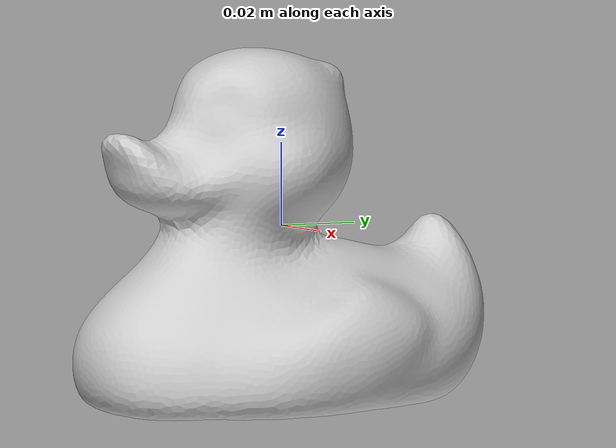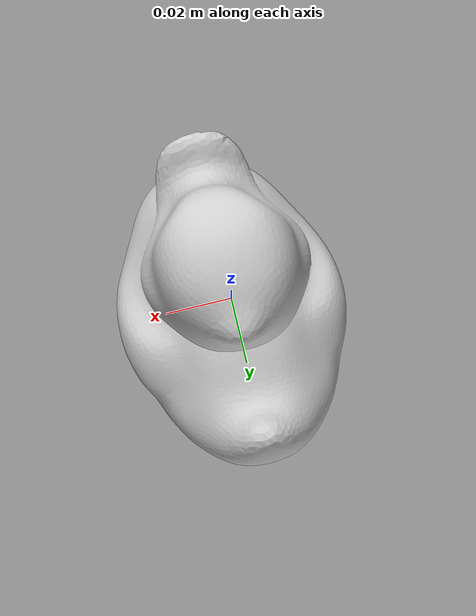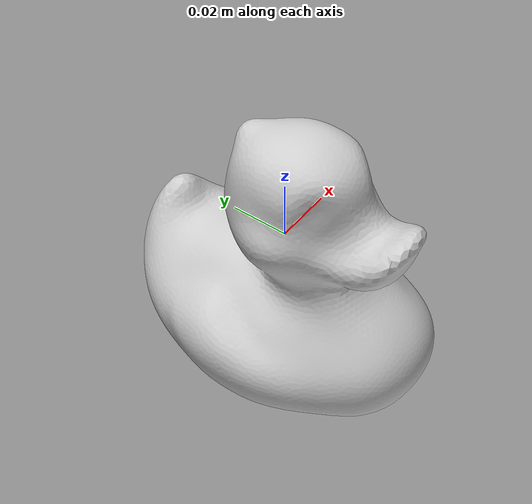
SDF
<?xml version="1.0" ?>
<sdf version="1.5">
  <model name="duck">
	<static>false</static>
    <pose>0 0 0 0 0 0</pose>
    <link name="link">
      <inertial>
        <mass>0.1</mass>
      </inertial>
      <collision name="collision">
        <geometry>
          <mesh>
            <uri>model://Duck/meshes/duck.dae</uri>
            <scale>1 1 1</scale>
          </mesh>
        </geometry>
      </collision>
      <visual name="visual">
        <geometry>
          <mesh>
            <uri>model://Duck/meshes/duck.dae</uri>
          </mesh>
        </geometry>
      </visual>
    </link>
  </model>
</sdf>
